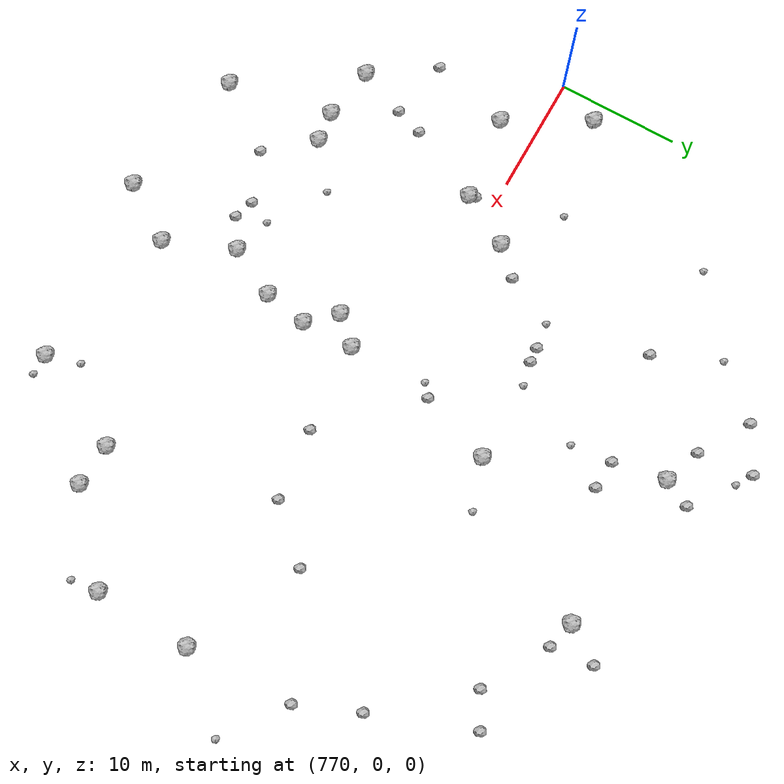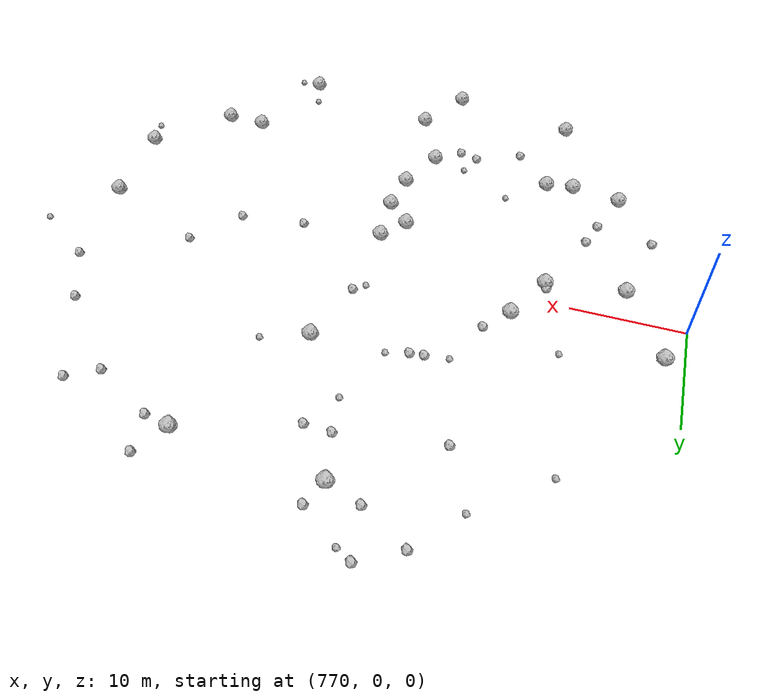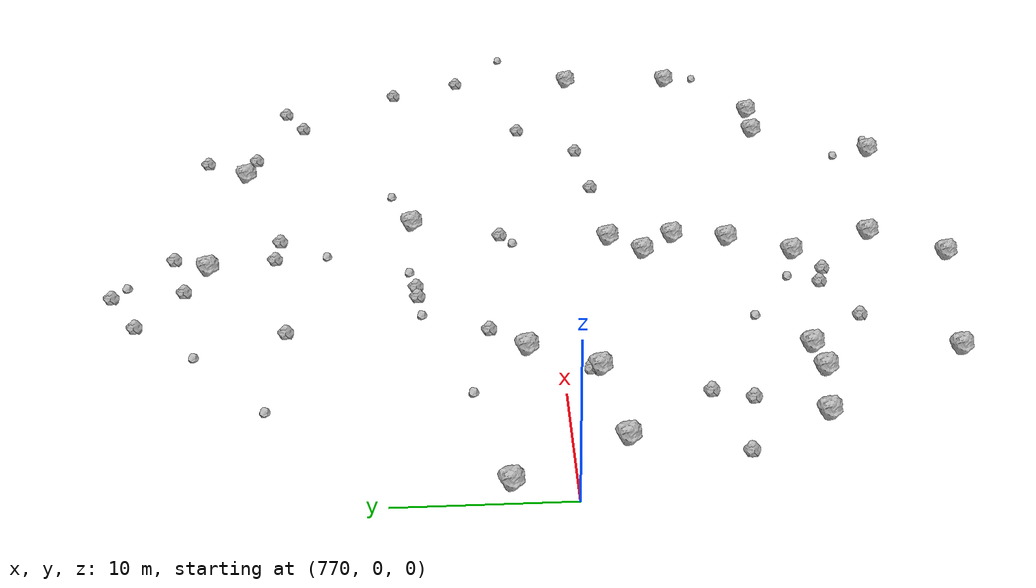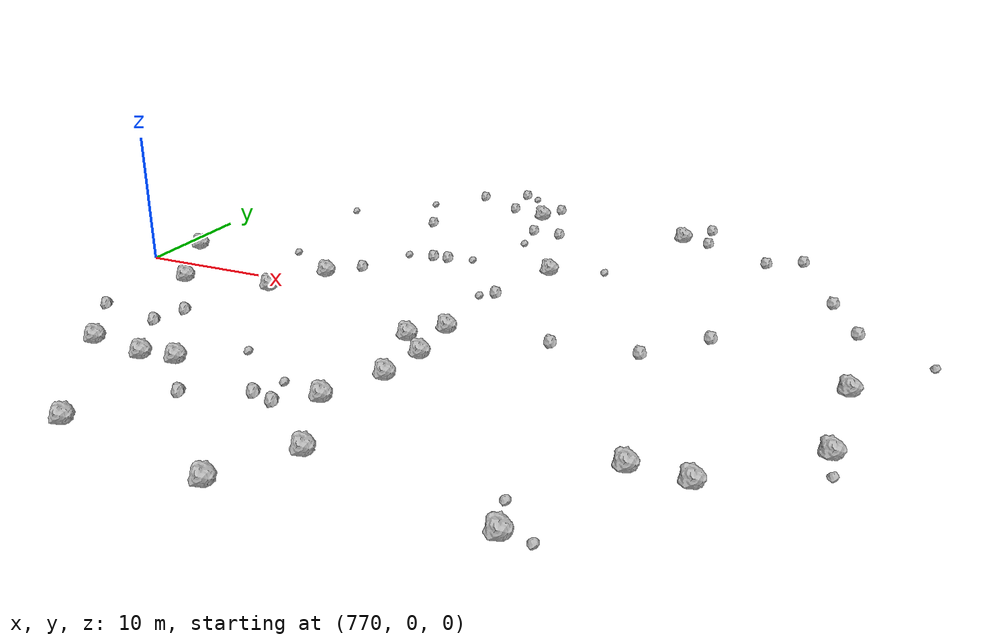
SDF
<sdf version="1.6">
 <world name="default">
  <include><uri>model://sun</uri></include>
  <model name="rock1_20_4">
   <include><uri>model://rock1</uri><pose>794.9432591807358 -26.086479094870807 0.5 0 0 0</pose></include>
  </model>
  <model name="rock1_20_5">
   <include><uri>model://rock1</uri><pose>782.496990430573 -2.1247367779442747 0.5 0 0 0</pose></include>
  </model>
  <model name="rock1_20_6">
   <include><uri>model://rock1</uri><pose>784.8861171014102 2.1022088375885915 0.5 0 0 0</pose></include>
  </model>
  <model name="rock1_20_7">
   <include><uri>model://rock1</uri><pose>814.3566883808202 -16.329370231976995 0.5 0 0 0</pose></include>
  </model>
  <model name="rock1_20_8">
   <include><uri>model://rock1</uri><pose>808.7369474105387 21.0974728577703 0.5 0 0 0</pose></include>
  </model>
  <model name="rock1_20_9">
   <include><uri>model://rock1</uri><pose>795.6121478103969 -15.925694029298889 0.5 0 0 0</pose></include>
  </model>
  <model name="rock1_20_10">
   <include><uri>model://rock1</uri><pose>798.2719619652845 -8.274181975156893 0.5 0 0 0</pose></include>
  </model>
  <model name="rock1_20_11">
   <include><uri>model://rock1</uri><pose>824.1131484442815 -10.851432657830426 0.5 0 0 0</pose></include>
  </model>
  <model name="rock1_20_12">
   <include><uri>model://rock1</uri><pose>783.5277912205531 -23.97042370033283 0.5 0 0 0</pose></include>
  </model>
  <model name="rock1_20_13">
   <include><uri>model://rock1</uri><pose>800.8483283574694 9.193653438613488 0.5 0 0 0</pose></include>
  </model>
  <model name="rock1_20_14">
   <include><uri>model://rock1</uri><pose>824.3518016549798 -2.9174635658676493 0.5 0 0 0</pose></include>
  </model>
  <model name="rock1_20_15">
   <include><uri>model://rock1</uri><pose>797.971453405031 -21.53432312452966 0.5 0 0 0</pose></include>
  </model>
  <model name="rock1_20_16">
   <include><uri>model://rock1</uri><pose>817.8782189302106 -16.52362408035691 0.5 0 0 0</pose></include>
  </model>
  <model name="rock1_20_17">
   <include><uri>model://rock1</uri><pose>771.720286419476 3.5623902173399173 0.5 0 0 0</pose></include>
  </model>
  <model name="rock1_20_18">
   <include><uri>model://rock1</uri><pose>775.4681720373088 -3.0738698032806475 0.5 0 0 0</pose></include>
  </model>
  <model name="rock1_20_19">
   <include><uri>model://rock1</uri><pose>777.2491515462477 -14.662237277120022 0.5 0 0 0</pose></include>
  </model>
  <model name="rock1_20_20">
   <include><uri>model://rock1</uri><pose>781.7213153568007 -15.38063766425164 0.5 0 0 0</pose></include>
  </model>
  <model name="rock1_20_21">
   <include><uri>model://rock1</uri><pose>798.1658845756942 -3.9631641210650095 0.5 0 0 0</pose></include>
  </model>
  <model name="rock1_20_22">
   <include><uri>model://rock1</uri><pose>797.6607153460684 -11.865854557213758 0.5 0 0 0</pose></include>
  </model>
  <model name="rock1_20_23">
   <include><uri>model://rock1</uri><pose>796.2311855135414 -6.092329599921225 0.5 0 0 0</pose></include>
  </model>
  <model name="rock1_20_24">
   <include><uri>model://rock1</uri><pose>810.5288138090057 -24.38184673703269 0.5 0 0 0</pose></include>
  </model>
  <model name="rock1_20_25">
   <include><uri>model://rock1</uri><pose>795.4523433553578 22.311076329785237 0.5 0 0 0</pose></include>
  </model>
  <model name="rock1_20_26">
   <include><uri>model://rock1</uri><pose>784.2549696879485 -15.062339441636052 0.5 0 0 0</pose></include>
  </model>
  <model name="rock2_20_0">
   <include><uri>model://rock2</uri><pose>798.7716568327297 3.289032177286593 0.3 0 0 0</pose></include>
  </model>
  <model name="rock2_20_1">
   <include><uri>model://rock2</uri><pose>810.9892162200915 20.552105670321815 0.3 0 0 0</pose></include>
  </model>
  <model name="rock2_20_2">
   <include><uri>model://rock2</uri><pose>793.2317803882327 -17.47956204480232 0.3 0 0 0</pose></include>
  </model>
  <model name="rock2_20_3">
   <include><uri>model://rock2</uri><pose>815.1318169488891 1.419147014122288 0.3 0 0 0</pose></include>
  </model>
  <model name="rock2_20_4">
   <include><uri>model://rock2</uri><pose>816.2558195894994 17.528154571793273 0.3 0 0 0</pose></include>
  </model>
  <model name="rock2_20_5">
   <include><uri>model://rock2</uri><pose>792.2573018617655 8.814602183879018 0.3 0 0 0</pose></include>
  </model>
  <model name="rock2_20_6">
   <include><uri>model://rock2</uri><pose>782.302955460351 -1.5378310612715893 0.3 0 0 0</pose></include>
  </model>
  <model name="rock2_20_7">
   <include><uri>model://rock2</uri><pose>788.2426544520205 25.942428975034964 0.3 0 0 0</pose></include>
  </model>
  <model name="rock2_20_8">
   <include><uri>model://rock2</uri><pose>796.4807036919252 24.60311951976555 0.3 0 0 0</pose></include>
  </model>
  <model name="rock2_20_9">
   <include><uri>model://rock2</uri><pose>822.0367287270765 10.872712770014282 0.3 0 0 0</pose></include>
  </model>
  <model name="rock2_20_10">
   <include><uri>model://rock2</uri><pose>778.7887877229001 -10.628383367089203 0.3 0 0 0</pose></include>
  </model>
  <model name="rock2_20_11">
   <include><uri>model://rock2</uri><pose>818.9603316199084 18.998021163043653 0.3 0 0 0</pose></include>
  </model>
  <model name="rock2_20_12">
   <include><uri>model://rock2</uri><pose>824.1161665153901 5.961226184351027 0.3 0 0 0</pose></include>
  </model>
  <model name="rock2_20_13">
   <include><uri>model://rock2</uri><pose>773.6886569567869 -9.651632690978506 0.3 0 0 0</pose></include>
  </model>
  <model name="rock2_20_14">
   <include><uri>model://rock2</uri><pose>786.892815252975 4.310046994437769 0.3 0 0 0</pose></include>
  </model>
  <model name="rock2_20_15">
   <include><uri>model://rock2</uri><pose>792.3312756942853 23.454851470118975 0.3 0 0 0</pose></include>
  </model>
  <model name="rock2_20_16">
   <include><uri>model://rock2</uri><pose>805.482213984097 -3.3727203352672177 0.3 0 0 0</pose></include>
  </model>
  <model name="rock2_20_17">
   <include><uri>model://rock2</uri><pose>796.2316933697197 18.042230795954012 0.3 0 0 0</pose></include>
  </model>
  <model name="rock2_20_18">
   <include><uri>model://rock2</uri><pose>791.8185024077362 27.927085987912797 0.3 0 0 0</pose></include>
  </model>
  <model name="rock2_20_19">
   <include><uri>model://rock2</uri><pose>798.6199247126182 17.8975451248838 0.3 0 0 0</pose></include>
  </model>
  <model name="rock2_20_20">
   <include><uri>model://rock2</uri><pose>787.3974185840298 -18.661401613528724 0.3 0 0 0</pose></include>
  </model>
  <model name="rock2_20_21">
   <include><uri>model://rock2</uri><pose>811.396150052235 -2.710590868674675 0.3 0 0 0</pose></include>
  </model>
  <model name="rock2_20_22">
   <include><uri>model://rock2</uri><pose>779.5810427369714 -8.301569296802938 0.3 0 0 0</pose></include>
  </model>
  <model name="rock2_20_23">
   <include><uri>model://rock2</uri><pose>810.6101162541855 24.020998060631783 0.3 0 0 0</pose></include>
  </model>
  <model name="rock2_20_24">
   <include><uri>model://rock2</uri><pose>791.5650120428759 -16.964662591020186 0.3 0 0 0</pose></include>
  </model>
  <model name="rock2_20_25">
   <include><uri>model://rock2</uri><pose>787.1359635937863 16.662339598972807 0.3 0 0 0</pose></include>
  </model>
  <model name="rock2_20_26">
   <include><uri>model://rock2</uri><pose>791.0158367345992 8.714395419621063 0.3 0 0 0</pose></include>
  </model>
  <model name="rock3_20_0">
   <include><uri>model://rock3</uri><pose>812.2553238790209 -24.463306759795188 0.2 0 0 0</pose></include>
  </model>
  <model name="rock3_20_1">
   <include><uri>model://rock3</uri><pose>794.2066072581902 9.229736596711504 0.2 0 0 0</pose></include>
  </model>
  <model name="rock3_20_2">
   <include><uri>model://rock3</uri><pose>793.1202056638041 27.10205810977692 0.2 0 0 0</pose></include>
  </model>
  <model name="rock3_20_3">
   <include><uri>model://rock3</uri><pose>804.8818645926043 10.593855401815567 0.2 0 0 0</pose></include>
  </model>
  <model name="rock3_20_4">
   <include><uri>model://rock3</uri><pose>788.8882661180922 8.39182225206072 0.2 0 0 0</pose></include>
  </model>
  <model name="rock3_20_5">
   <include><uri>model://rock3</uri><pose>780.197962432967 5.372433677212669 0.2 0 0 0</pose></include>
  </model>
  <model name="rock3_20_6">
   <include><uri>model://rock3</uri><pose>829.0103122223196 2.378084154947558 0.2 0 0 0</pose></include>
  </model>
  <model name="rock3_20_7">
   <include><uri>model://rock3</uri><pose>792.4228679354413 -15.081276259990801 0.2 0 0 0</pose></include>
  </model>
  <model name="rock3_20_8">
   <include><uri>model://rock3</uri><pose>797.7630207238726 2.435794961700509 0.2 0 0 0</pose></include>
  </model>
  <model name="rock3_20_9">
   <include><uri>model://rock3</uri><pose>778.8332114474947 17.196683513754728 0.2 0 0 0</pose></include>
  </model>
  <model name="rock3_20_10">
   <include><uri>model://rock3</uri><pose>824.3883237423216 -13.173436391434983 0.2 0 0 0</pose></include>
  </model>
  <model name="rock3_20_11">
   <include><uri>model://rock3</uri><pose>787.7604022661699 -12.230340887517993 0.2 0 0 0</pose></include>
  </model>
  <model name="rock3_20_12">
   <include><uri>model://rock3</uri><pose>796.587382918203 14.653773755895344 0.2 0 0 0</pose></include>
  </model>
  <model name="rock3_20_13">
   <include><uri>model://rock3</uri><pose>784.7349848936085 21.925871301095427 0.2 0 0 0</pose></include>
  </model>
  <model name="rock3_20_14">
   <include><uri>model://rock3</uri><pose>809.7277507145199 -21.67936241284685 0.2 0 0 0</pose></include>
  </model>
 </world>
</sdf>
